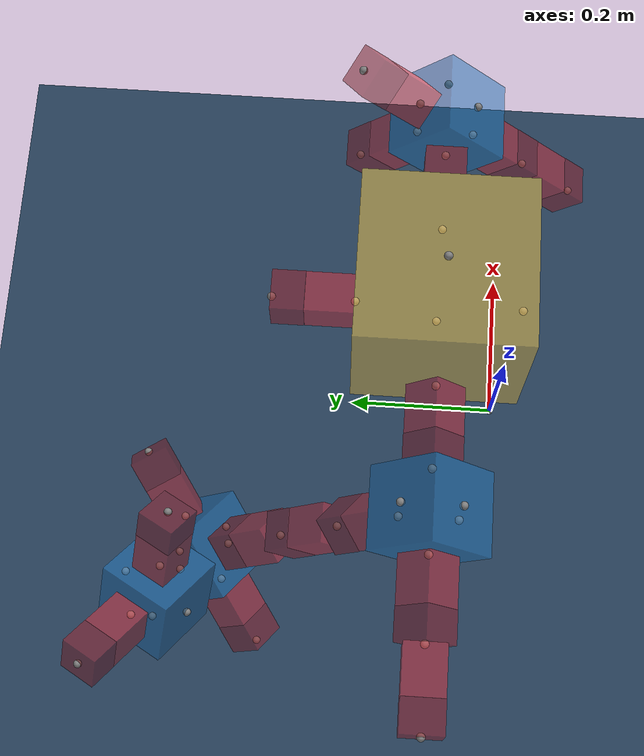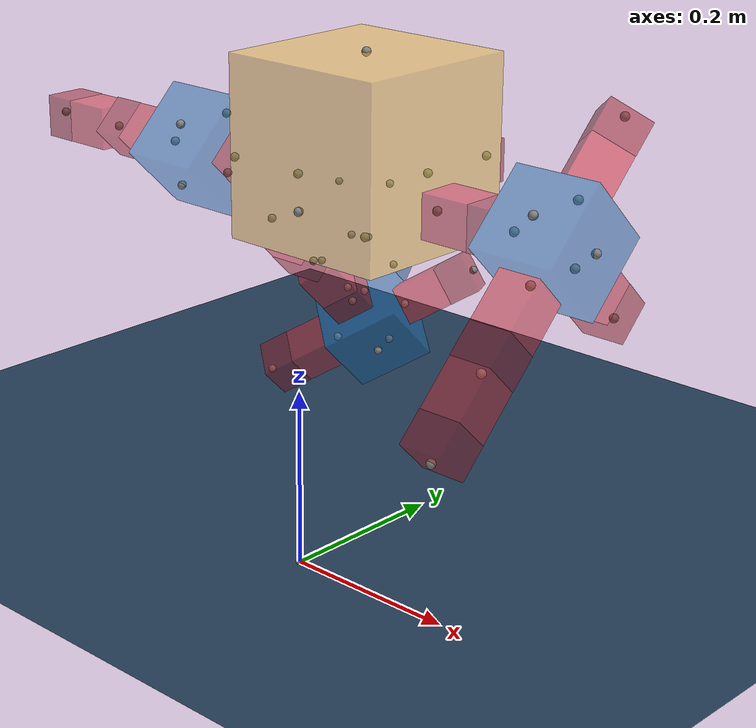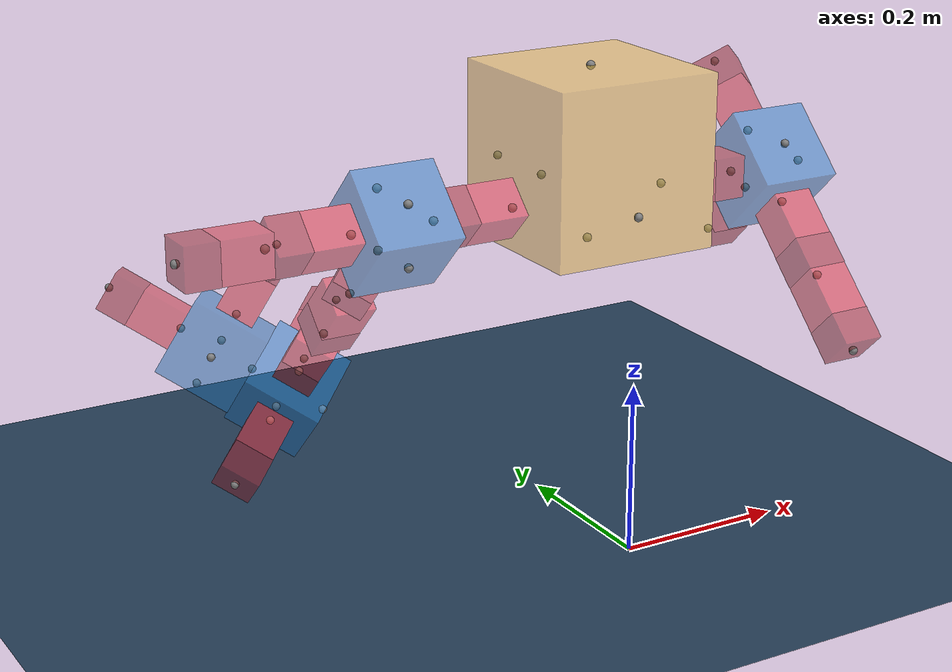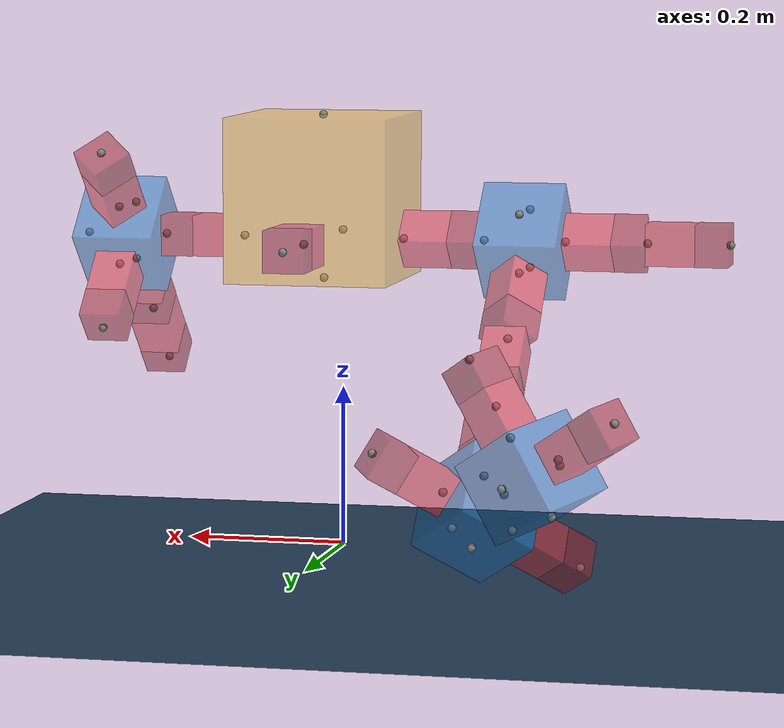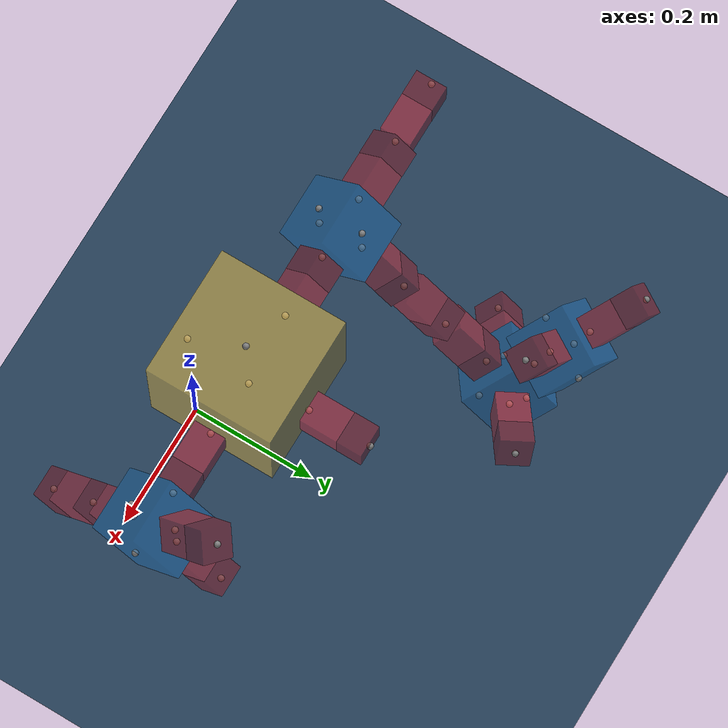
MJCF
<mujoco model="Simple Flat World">
  <compiler angle="radian"/>

  <option integrator="implicitfast"/>

  <visual>
    <global offwidth="1280" offheight="960"/>
  </visual>

  <default>
    <default class="robot1_main">
      <default class="robot1_0-1-2-main">
        <default class="robot1_0-1-2-1-10-0-main"/>
        <default class="robot1_0-1-2-10-2-5-main"/>
        <default class="robot1_0-1-2-10-19-4-main"/>
        <default class="robot1_0-1-2-10-4-3-main"/>
      </default>
      <default class="robot1_0-12-3-main"/>
      <default class="robot1_0-17-0-main"/>
      <default class="robot1_12-14-0-main"/>
      <default class="robot1_2-28-0-main"/>
      <default class="robot1_14-20-0-main"/>
      <default class="robot1_14-29-2-main"/>
      <default class="robot1_20-23-0-main"/>
      <default class="robot1_29-27-0-main"/>
      <default class="robot1_27-26-0-main"/>
      <default class="robot1_26-7-0-main"/>
      <default class="robot1_7-11-5-main"/>
      <default class="robot1_7-16-3-main"/>
      <default class="robot1_7-21-4-main"/>
      <default class="robot1_16-24-3-main"/>
      <default class="robot1_16-6-0-main"/>
    </default>
  </default>

  <asset>
    <texture type="2d" colorspace="auto" name="floor" builtin="checker" rgb1="0.1 0.2 0.3" rgb2="0.2 0.3 0.4" width="600" height="600"/>
    <material name="floor" texture="floor" texuniform="true" texrepeat="3 3"/>
  </asset>

  <worldbody>
    <site pos="0 0 0"/>
    <camera name="ortho-cam" pos="-5 0 5" quat="0.653281 0.270598 -0.270598 -0.653281" orthographic="true" fovy="5"/>
    <light name="light" pos="0 0 1" dir="0 0 -1" type="directional" castshadow="false"/>
    <body name="floor">
      <geom name="floor" size="5 5 0.5" type="plane" material="floor"/>
    </body>
    <body name="robot1_world" pos="0 0 0.448094">
      <joint type="free"/>
      <body name="robot1_core">
        <geom name="robot1_core" size="0.1 0.1 0.1" pos="0 0.1 0" type="box" mass="1" rgba="0.992157 0.792157 0.25098 0.5"/>
        <site name="robot1_core-front" pos="0 0.2 -0.05"/>
        <site name="robot1_core-back" pos="0 0 -0.05" quat="0 0 0 1"/>
        <site name="robot1_core-left" pos="-0.1 0.1 -0.05" quat="0.707107 0 0 0.707107"/>
        <site name="robot1_core-right" pos="0.1 0.1 -0.05" quat="-0.707107 0 0 0.707107"/>
        <site name="robot1_core-top" pos="0 0.1 0.1" quat="0.707107 0.707107 0 0"/>
        <site name="robot1_core-bottom" pos="0 0.1 -0.1" quat="0 0 -0.707107 0.707107"/>
        <body name="robot1_0-1-2-hinge" pos="0.1 0.1 -0.05" quat="-0.707107 0 0 0.707107">
          <body name="robot1_0-1-2-stator" pos="0 0.03 0">
            <geom name="robot1_0-1-2-stator" size="0.02475 0.0297 0.02475" type="box" mass="0.02" rgba="0.87451 0.160784 0.207843 0.5"/>
          </body>
          <body name="robot1_0-1-2-rotor" pos="0 0.08 0">
            <joint name="robot1_0-1-2-servo" pos="0 -0.02 0" axis="0 0 1"/>
            <geom name="robot1_0-1-2-rotor" size="0.025 0.02 0.025" type="box" mass="0.04" rgba="0.627451 0.0941176 0.129412 0.5"/>
            <site name="robot1_0-1-2-hinge-front" pos="0 0.02 0"/>
            <body name="robot1_0-1-2-1-10-0-brick" pos="0 0.02 0" quat="-0.923785 0 0.382911 0">
              <geom name="robot1_0-1-2-1-10-0-brick" size="0.05 0.05 0.05" pos="0 0.05 0" type="box" mass="0.055" rgba="0.109804 0.466667 0.764706 0.5"/>
              <site name="robot1_0-1-2-1-10-0-brick-front" pos="0 0.1 0"/>
              <site name="robot1_0-1-2-1-10-0-brick-left" pos="-0.05 0.05 0" quat="0.707107 0 0 0.707107"/>
              <site name="robot1_0-1-2-1-10-0-brick-right" pos="0.05 0.05 0" quat="-0.707107 0 0 0.707107"/>
              <site name="robot1_0-1-2-1-10-0-brick-top" pos="0 0.05 0.05" quat="0.707107 0.707107 0 0"/>
              <site name="robot1_0-1-2-1-10-0-brick-bottom" pos="0 0.05 -0.05" quat="0 0 -0.707107 0.707107"/>
              <body name="robot1_0-1-2-10-2-5-hinge" pos="0 0.05 -0.05" quat="0.707107 -0.707107 0 0">
                <body name="robot1_0-1-2-10-2-5-stator" pos="0 0.03 0">
                  <geom name="robot1_0-1-2-10-2-5-stator" size="0.02475 0.0297 0.02475" type="box" mass="0.02" rgba="0.87451 0.160784 0.207843 0.5"/>
                </body>
                <body name="robot1_0-1-2-10-2-5-rotor" pos="0 0.08 0">
                  <joint name="robot1_0-1-2-10-2-5-servo" pos="0 -0.02 0" axis="0 0 1"/>
                  <geom name="robot1_0-1-2-10-2-5-rotor" size="0.025 0.02 0.025" type="box" mass="0.04" rgba="0.627451 0.0941176 0.129412 0.5"/>
                  <site name="robot1_0-1-2-10-2-5-hinge-front" pos="0 0.02 0"/>
                  <body name="robot1_2-28-0-hinge" pos="0 0.02 0">
                    <body name="robot1_2-28-0-stator" pos="0 0.03 0">
                      <geom name="robot1_2-28-0-stator" size="0.02475 0.0297 0.02475" type="box" mass="0.02" rgba="0.87451 0.160784 0.207843 0.5"/>
                    </body>
                    <body name="robot1_2-28-0-rotor" pos="0 0.08 0">
                      <joint name="robot1_2-28-0-servo" pos="0 -0.02 0" axis="0 0 1"/>
                      <geom name="robot1_2-28-0-rotor" size="0.025 0.02 0.025" type="box" mass="0.04" rgba="0.627451 0.0941176 0.129412 0.5"/>
                      <site name="robot1_2-28-0-hinge-front" pos="0 0.02 0"/>
                    </body>
                  </body>
                </body>
              </body>
              <body name="robot1_0-1-2-10-19-4-hinge" pos="0 0.05 0.05" quat="-0.270759 -0.270759 0.653215 0.653215">
                <body name="robot1_0-1-2-10-19-4-stator" pos="0 0.03 0">
                  <geom name="robot1_0-1-2-10-19-4-stator" size="0.02475 0.0297 0.02475" type="box" mass="0.02" rgba="0.87451 0.160784 0.207843 0.5"/>
                </body>
                <body name="robot1_0-1-2-10-19-4-rotor" pos="0 0.08 0">
                  <joint name="robot1_0-1-2-10-19-4-servo" pos="0 -0.02 0" axis="0 0 1"/>
                  <geom name="robot1_0-1-2-10-19-4-rotor" size="0.025 0.02 0.025" type="box" mass="0.04" rgba="0.627451 0.0941176 0.129412 0.5"/>
                  <site name="robot1_0-1-2-10-19-4-hinge-front" pos="0 0.02 0"/>
                </body>
              </body>
              <body name="robot1_0-1-2-10-4-3-hinge" pos="-0.05 0.05 0" quat="0 -0.707107 0.707107 0">
                <body name="robot1_0-1-2-10-4-3-stator" pos="0 0.03 0">
                  <geom name="robot1_0-1-2-10-4-3-stator" size="0.02475 0.0297 0.02475" type="box" mass="0.02" rgba="0.87451 0.160784 0.207843 0.5"/>
                </body>
                <body name="robot1_0-1-2-10-4-3-rotor" pos="0 0.08 0">
                  <joint name="robot1_0-1-2-10-4-3-servo" pos="0 -0.02 0" axis="0 0 1"/>
                  <geom name="robot1_0-1-2-10-4-3-rotor" size="0.025 0.02 0.025" type="box" mass="0.04" rgba="0.627451 0.0941176 0.129412 0.5"/>
                  <site name="robot1_0-1-2-10-4-3-hinge-front" pos="0 0.02 0"/>
                </body>
              </body>
            </body>
          </body>
        </body>
        <body name="robot1_0-12-3-hinge" pos="-0.1 0.1 -0.05" quat="-0.270759 -0.653215 0.653215 -0.270759">
          <body name="robot1_0-12-3-stator" pos="0 0.03 0">
            <geom name="robot1_0-12-3-stator" size="0.02475 0.0297 0.02475" type="box" mass="0.02" rgba="0.87451 0.160784 0.207843 0.5"/>
          </body>
          <body name="robot1_0-12-3-rotor" pos="0 0.08 0">
            <joint name="robot1_0-12-3-servo" pos="0 -0.02 0" axis="0 0 1"/>
            <geom name="robot1_0-12-3-rotor" size="0.025 0.02 0.025" type="box" mass="0.04" rgba="0.627451 0.0941176 0.129412 0.5"/>
            <site name="robot1_0-12-3-hinge-front" pos="0 0.02 0"/>
            <body name="robot1_12-14-0-brick" pos="0 0.02 0" quat="0 0 1 0">
              <geom name="robot1_12-14-0-brick" size="0.05 0.05 0.05" pos="0 0.05 0" type="box" mass="0.055" rgba="0.109804 0.466667 0.764706 0.5"/>
              <site name="robot1_12-14-0-brick-front" pos="0 0.1 0"/>
              <site name="robot1_12-14-0-brick-left" pos="-0.05 0.05 0" quat="0.707107 0 0 0.707107"/>
              <site name="robot1_12-14-0-brick-right" pos="0.05 0.05 0" quat="-0.707107 0 0 0.707107"/>
              <site name="robot1_12-14-0-brick-top" pos="0 0.05 0.05" quat="0.707107 0.707107 0 0"/>
              <site name="robot1_12-14-0-brick-bottom" pos="0 0.05 -0.05" quat="0 0 -0.707107 0.707107"/>
              <body name="robot1_14-20-0-hinge" pos="0 0.1 0" quat="0 0 1 0">
                <body name="robot1_14-20-0-stator" pos="0 0.03 0">
                  <geom name="robot1_14-20-0-stator" size="0.02475 0.0297 0.02475" type="box" mass="0.02" rgba="0.87451 0.160784 0.207843 0.5"/>
                </body>
                <body name="robot1_14-20-0-rotor" pos="0 0.08 0">
                  <joint name="robot1_14-20-0-servo" pos="0 -0.02 0" axis="0 0 1"/>
                  <geom name="robot1_14-20-0-rotor" size="0.025 0.02 0.025" type="box" mass="0.04" rgba="0.627451 0.0941176 0.129412 0.5"/>
                  <site name="robot1_14-20-0-hinge-front" pos="0 0.02 0"/>
                  <body name="robot1_20-23-0-hinge" pos="0 0.02 0" quat="-0.382911 0 0.923785 0">
                    <body name="robot1_20-23-0-stator" pos="0 0.03 0">
                      <geom name="robot1_20-23-0-stator" size="0.02475 0.0297 0.02475" type="box" mass="0.02" rgba="0.87451 0.160784 0.207843 0.5"/>
                    </body>
                    <body name="robot1_20-23-0-rotor" pos="0 0.08 0">
                      <joint name="robot1_20-23-0-servo" pos="0 -0.02 0" axis="0 0 1"/>
                      <geom name="robot1_20-23-0-rotor" size="0.025 0.02 0.025" type="box" mass="0.04" rgba="0.627451 0.0941176 0.129412 0.5"/>
                      <site name="robot1_20-23-0-hinge-front" pos="0 0.02 0"/>
                    </body>
                  </body>
                </body>
              </body>
              <body name="robot1_14-29-2-hinge" pos="0.05 0.05 0" quat="0.270759 -0.653215 -0.653215 -0.270759">
                <body name="robot1_14-29-2-stator" pos="0 0.03 0">
                  <geom name="robot1_14-29-2-stator" size="0.02475 0.0297 0.02475" type="box" mass="0.02" rgba="0.87451 0.160784 0.207843 0.5"/>
                </body>
                <body name="robot1_14-29-2-rotor" pos="0 0.08 0">
                  <joint name="robot1_14-29-2-servo" pos="0 -0.02 0" axis="0 0 1"/>
                  <geom name="robot1_14-29-2-rotor" size="0.025 0.02 0.025" type="box" mass="0.04" rgba="0.627451 0.0941176 0.129412 0.5"/>
                  <site name="robot1_14-29-2-hinge-front" pos="0 0.02 0"/>
                  <body name="robot1_29-27-0-hinge" pos="0 0.02 0" quat="-0.923785 0 0.382911 0">
                    <body name="robot1_29-27-0-stator" pos="0 0.03 0">
                      <geom name="robot1_29-27-0-stator" size="0.02475 0.0297 0.02475" type="box" mass="0.02" rgba="0.87451 0.160784 0.207843 0.5"/>
                    </body>
                    <body name="robot1_29-27-0-rotor" pos="0 0.08 0">
                      <joint name="robot1_29-27-0-servo" pos="0 -0.02 0" axis="0 0 1"/>
                      <geom name="robot1_29-27-0-rotor" size="0.025 0.02 0.025" type="box" mass="0.04" rgba="0.627451 0.0941176 0.129412 0.5"/>
                      <site name="robot1_29-27-0-hinge-front" pos="0 0.02 0"/>
                      <body name="robot1_27-26-0-hinge" pos="0 0.02 0" quat="-0.382911 0 0.923785 0">
                        <body name="robot1_27-26-0-stator" pos="0 0.03 0">
                          <geom name="robot1_27-26-0-stator" size="0.02475 0.0297 0.02475" type="box" mass="0.02" rgba="0.87451 0.160784 0.207843 0.5"/>
                        </body>
                        <body name="robot1_27-26-0-rotor" pos="0 0.08 0">
                          <joint name="robot1_27-26-0-servo" pos="0 -0.02 0" axis="0 0 1"/>
                          <geom name="robot1_27-26-0-rotor" size="0.025 0.02 0.025" type="box" mass="0.04" rgba="0.627451 0.0941176 0.129412 0.5"/>
                          <site name="robot1_27-26-0-hinge-front" pos="0 0.02 0"/>
                          <body name="robot1_26-7-0-brick" pos="0 0.02 0">
                            <geom name="robot1_26-7-0-brick" size="0.05 0.05 0.05" pos="0 0.05 0" type="box" mass="0.055" rgba="0.109804 0.466667 0.764706 0.5"/>
                            <site name="robot1_26-7-0-brick-front" pos="0 0.1 0"/>
                            <site name="robot1_26-7-0-brick-left" pos="-0.05 0.05 0" quat="0.707107 0 0 0.707107"/>
                            <site name="robot1_26-7-0-brick-right" pos="0.05 0.05 0" quat="-0.707107 0 0 0.707107"/>
                            <site name="robot1_26-7-0-brick-top" pos="0 0.05 0.05" quat="0.707107 0.707107 0 0"/>
                            <site name="robot1_26-7-0-brick-bottom" pos="0 0.05 -0.05" quat="0 0 -0.707107 0.707107"/>
                            <body name="robot1_7-11-5-hinge" pos="0 0.05 -0.05" quat="0.707107 -0.707107 0 0">
                              <body name="robot1_7-11-5-stator" pos="0 0.03 0">
                                <geom name="robot1_7-11-5-stator" size="0.02475 0.0297 0.02475" type="box" mass="0.02" rgba="0.87451 0.160784 0.207843 0.5"/>
                              </body>
                              <body name="robot1_7-11-5-rotor" pos="0 0.08 0">
                                <joint name="robot1_7-11-5-servo" pos="0 -0.02 0" axis="0 0 1"/>
                                <geom name="robot1_7-11-5-rotor" size="0.025 0.02 0.025" type="box" mass="0.04" rgba="0.627451 0.0941176 0.129412 0.5"/>
                                <site name="robot1_7-11-5-hinge-front" pos="0 0.02 0"/>
                              </body>
                            </body>
                            <body name="robot1_7-16-3-brick" pos="-0.05 0.05 0" quat="0.653215 -0.270759 0.270759 0.653215">
                              <geom name="robot1_7-16-3-brick" size="0.05 0.05 0.05" pos="0 0.05 0" type="box" mass="0.055" rgba="0.109804 0.466667 0.764706 0.5"/>
                              <site name="robot1_7-16-3-brick-front" pos="0 0.1 0"/>
                              <site name="robot1_7-16-3-brick-left" pos="-0.05 0.05 0" quat="0.707107 0 0 0.707107"/>
                              <site name="robot1_7-16-3-brick-right" pos="0.05 0.05 0" quat="-0.707107 0 0 0.707107"/>
                              <site name="robot1_7-16-3-brick-top" pos="0 0.05 0.05" quat="0.707107 0.707107 0 0"/>
                              <site name="robot1_7-16-3-brick-bottom" pos="0 0.05 -0.05" quat="0 0 -0.707107 0.707107"/>
                              <body name="robot1_16-24-3-hinge" pos="-0.05 0.05 0" quat="0.707107 0 0 0.707107">
                                <body name="robot1_16-24-3-stator" pos="0 0.03 0">
                                  <geom name="robot1_16-24-3-stator" size="0.02475 0.0297 0.02475" type="box" mass="0.02" rgba="0.87451 0.160784 0.207843 0.5"/>
                                </body>
                                <body name="robot1_16-24-3-rotor" pos="0 0.08 0">
                                  <joint name="robot1_16-24-3-servo" pos="0 -0.02 0" axis="0 0 1"/>
                                  <geom name="robot1_16-24-3-rotor" size="0.025 0.02 0.025" type="box" mass="0.04" rgba="0.627451 0.0941176 0.129412 0.5"/>
                                  <site name="robot1_16-24-3-hinge-front" pos="0 0.02 0"/>
                                </body>
                              </body>
                              <body name="robot1_16-6-0-hinge" pos="0 0.1 0" quat="0 0 1 0">
                                <body name="robot1_16-6-0-stator" pos="0 0.03 0">
                                  <geom name="robot1_16-6-0-stator" size="0.02475 0.0297 0.02475" type="box" mass="0.02" rgba="0.87451 0.160784 0.207843 0.5"/>
                                </body>
                                <body name="robot1_16-6-0-rotor" pos="0 0.08 0">
                                  <joint name="robot1_16-6-0-servo" pos="0 -0.02 0" axis="0 0 1"/>
                                  <geom name="robot1_16-6-0-rotor" size="0.025 0.02 0.025" type="box" mass="0.04" rgba="0.627451 0.0941176 0.129412 0.5"/>
                                  <site name="robot1_16-6-0-hinge-front" pos="0 0.02 0"/>
                                </body>
                              </body>
                            </body>
                            <body name="robot1_7-21-4-hinge" pos="0 0.05 0.05" quat="-0.270759 -0.270759 0.653215 0.653215">
                              <body name="robot1_7-21-4-stator" pos="0 0.03 0">
                                <geom name="robot1_7-21-4-stator" size="0.02475 0.0297 0.02475" type="box" mass="0.02" rgba="0.87451 0.160784 0.207843 0.5"/>
                              </body>
                              <body name="robot1_7-21-4-rotor" pos="0 0.08 0">
                                <joint name="robot1_7-21-4-servo" pos="0 -0.02 0" axis="0 0 1"/>
                                <geom name="robot1_7-21-4-rotor" size="0.025 0.02 0.025" type="box" mass="0.04" rgba="0.627451 0.0941176 0.129412 0.5"/>
                                <site name="robot1_7-21-4-hinge-front" pos="0 0.02 0"/>
                              </body>
                            </body>
                          </body>
                        </body>
                      </body>
                    </body>
                  </body>
                </body>
              </body>
            </body>
          </body>
        </body>
        <body name="robot1_0-17-0-hinge" pos="0 0.2 -0.05" quat="-0.707107 0 0.707107 0">
          <body name="robot1_0-17-0-stator" pos="0 0.03 0">
            <geom name="robot1_0-17-0-stator" size="0.02475 0.0297 0.02475" type="box" mass="0.02" rgba="0.87451 0.160784 0.207843 0.5"/>
          </body>
          <body name="robot1_0-17-0-rotor" pos="0 0.08 0">
            <joint name="robot1_0-17-0-servo" pos="0 -0.02 0" axis="0 0 1"/>
            <geom name="robot1_0-17-0-rotor" size="0.025 0.02 0.025" type="box" mass="0.04" rgba="0.627451 0.0941176 0.129412 0.5"/>
            <site name="robot1_0-17-0-hinge-front" pos="0 0.02 0"/>
          </body>
        </body>
      </body>
    </body>
  </worldbody>

  <contact>
    <exclude body1="robot1_0-1-2-stator" body2="robot1_0-1-2-rotor"/>
    <exclude body1="robot1_0-1-2-10-2-5-stator" body2="robot1_0-1-2-10-2-5-rotor"/>
    <exclude body1="robot1_2-28-0-stator" body2="robot1_2-28-0-rotor"/>
    <exclude body1="robot1_0-1-2-10-19-4-stator" body2="robot1_0-1-2-10-19-4-rotor"/>
    <exclude body1="robot1_0-1-2-10-4-3-stator" body2="robot1_0-1-2-10-4-3-rotor"/>
    <exclude body1="robot1_0-12-3-stator" body2="robot1_0-12-3-rotor"/>
    <exclude body1="robot1_14-20-0-stator" body2="robot1_14-20-0-rotor"/>
    <exclude body1="robot1_20-23-0-stator" body2="robot1_20-23-0-rotor"/>
    <exclude body1="robot1_14-29-2-stator" body2="robot1_14-29-2-rotor"/>
    <exclude body1="robot1_29-27-0-stator" body2="robot1_29-27-0-rotor"/>
    <exclude body1="robot1_27-26-0-stator" body2="robot1_27-26-0-rotor"/>
    <exclude body1="robot1_7-11-5-stator" body2="robot1_7-11-5-rotor"/>
    <exclude body1="robot1_16-24-3-stator" body2="robot1_16-24-3-rotor"/>
    <exclude body1="robot1_16-6-0-stator" body2="robot1_16-6-0-rotor"/>
    <exclude body1="robot1_7-21-4-stator" body2="robot1_7-21-4-rotor"/>
    <exclude body1="robot1_0-17-0-stator" body2="robot1_0-17-0-rotor"/>
  </contact>

  <actuator>
    <general name="robot1_0-1-2-servo" joint="robot1_0-1-2-servo" ctrlrange="-1.5708 1.5708" dynprm="0 0 0 0 0 0 0 0 0 0" biastype="affine" biasprm="0 -1 -1"/>
    <general name="robot1_0-1-2-10-2-5-servo" joint="robot1_0-1-2-10-2-5-servo" ctrlrange="-1.5708 1.5708" dynprm="0 0 0 0 0 0 0 0 0 0" biastype="affine" biasprm="0 -1 -1"/>
    <general name="robot1_0-1-2-10-19-4-servo" joint="robot1_0-1-2-10-19-4-servo" ctrlrange="-1.5708 1.5708" dynprm="0 0 0 0 0 0 0 0 0 0" biastype="affine" biasprm="0 -1 -1"/>
    <general name="robot1_0-1-2-10-4-3-servo" joint="robot1_0-1-2-10-4-3-servo" ctrlrange="-1.5708 1.5708" dynprm="0 0 0 0 0 0 0 0 0 0" biastype="affine" biasprm="0 -1 -1"/>
    <general name="robot1_0-12-3-servo" joint="robot1_0-12-3-servo" ctrlrange="-1.5708 1.5708" dynprm="0 0 0 0 0 0 0 0 0 0" biastype="affine" biasprm="0 -1 -1"/>
    <general name="robot1_0-17-0-servo" joint="robot1_0-17-0-servo" ctrlrange="-1.5708 1.5708" dynprm="0 0 0 0 0 0 0 0 0 0" biastype="affine" biasprm="0 -1 -1"/>
    <general name="robot1_2-28-0-servo" joint="robot1_2-28-0-servo" ctrlrange="-1.5708 1.5708" dynprm="0 0 0 0 0 0 0 0 0 0" biastype="affine" biasprm="0 -1 -1"/>
    <general name="robot1_14-20-0-servo" joint="robot1_14-20-0-servo" ctrlrange="-1.5708 1.5708" dynprm="0 0 0 0 0 0 0 0 0 0" biastype="affine" biasprm="0 -1 -1"/>
    <general name="robot1_14-29-2-servo" joint="robot1_14-29-2-servo" ctrlrange="-1.5708 1.5708" dynprm="0 0 0 0 0 0 0 0 0 0" biastype="affine" biasprm="0 -1 -1"/>
    <general name="robot1_20-23-0-servo" joint="robot1_20-23-0-servo" ctrlrange="-1.5708 1.5708" dynprm="0 0 0 0 0 0 0 0 0 0" biastype="affine" biasprm="0 -1 -1"/>
    <general name="robot1_29-27-0-servo" joint="robot1_29-27-0-servo" ctrlrange="-1.5708 1.5708" dynprm="0 0 0 0 0 0 0 0 0 0" biastype="affine" biasprm="0 -1 -1"/>
    <general name="robot1_27-26-0-servo" joint="robot1_27-26-0-servo" ctrlrange="-1.5708 1.5708" dynprm="0 0 0 0 0 0 0 0 0 0" biastype="affine" biasprm="0 -1 -1"/>
    <general name="robot1_7-11-5-servo" joint="robot1_7-11-5-servo" ctrlrange="-1.5708 1.5708" dynprm="0 0 0 0 0 0 0 0 0 0" biastype="affine" biasprm="0 -1 -1"/>
    <general name="robot1_7-21-4-servo" joint="robot1_7-21-4-servo" ctrlrange="-1.5708 1.5708" dynprm="0 0 0 0 0 0 0 0 0 0" biastype="affine" biasprm="0 -1 -1"/>
    <general name="robot1_16-24-3-servo" joint="robot1_16-24-3-servo" ctrlrange="-1.5708 1.5708" dynprm="0 0 0 0 0 0 0 0 0 0" biastype="affine" biasprm="0 -1 -1"/>
    <general name="robot1_16-6-0-servo" joint="robot1_16-6-0-servo" ctrlrange="-1.5708 1.5708" dynprm="0 0 0 0 0 0 0 0 0 0" biastype="affine" biasprm="0 -1 -1"/>
  </actuator>
</mujoco>
